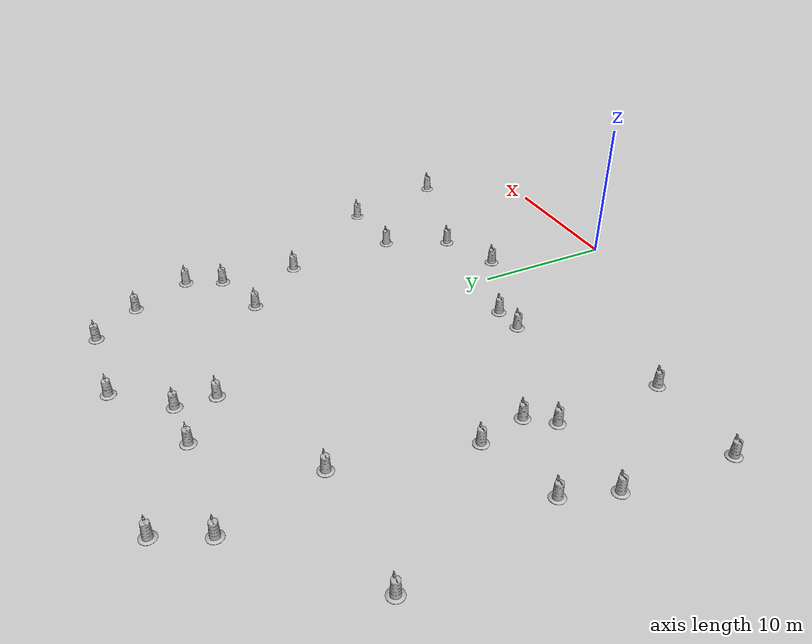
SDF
<sdf version="1.6">
 <world name="IGVC_Advanced_Course">
  <model name="Construction Barrel_4">
   <link name="link">
    <inertial>
     <pose>0 0 0.4 0 -0 0</pose>
     <mass>500</mass>
     <inertia><ixx>51.2096</ixx><iyy>51.2096</iyy><izz>25</izz><ixy>0</ixy><ixz>0</ixz><iyz>0</iyz></inertia>
    </inertial>
    <collision name="collision">
     <geometry><mesh><uri>model://construction_barrel/meshes/construction_barrel.dae</uri></mesh></geometry>
    </collision>
    <visual name="visual">
     <geometry><mesh><uri>model://construction_barrel/meshes/construction_barrel.dae</uri></mesh></geometry>
    </visual>
   </link>
   <pose>-14.9036 35.2693 -0 0 -0 0.000427</pose>
  </model>
  <model name="Construction Barrel_5">
   <link name="link">
    <inertial>
     <pose>0 0 0.4 0 -0 0</pose>
     <mass>500</mass>
     <inertia><ixx>51.2096</ixx><iyy>51.2096</iyy><izz>25</izz><ixy>0</ixy><ixz>0</ixz><iyz>0</iyz></inertia>
    </inertial>
    <collision name="collision">
     <geometry><mesh><uri>model://construction_barrel/meshes/construction_barrel.dae</uri></mesh></geometry>
    </collision>
    <visual name="visual">
     <geometry><mesh><uri>model://construction_barrel/meshes/construction_barrel.dae</uri></mesh></geometry>
    </visual>
   </link>
   <pose>-13.4627 38.3893 -0 0 -0 0.000489</pose>
  </model>
  <model name="Construction Barrel_6">
   <link name="link">
    <inertial>
     <pose>0 0 0.4 0 -0 0</pose>
     <mass>500</mass>
     <inertia><ixx>51.2096</ixx><iyy>51.2096</iyy><izz>25</izz><ixy>0</ixy><ixz>0</ixz><iyz>0</iyz></inertia>
    </inertial>
    <collision name="collision">
     <geometry><mesh><uri>model://construction_barrel/meshes/construction_barrel.dae</uri></mesh></geometry>
    </collision>
    <visual name="visual">
     <geometry><mesh><uri>model://construction_barrel/meshes/construction_barrel.dae</uri></mesh></geometry>
    </visual>
   </link>
   <pose>-13.0399 28.4221 0 0 1e-06 0.000425</pose>
  </model>
  <model name="Construction Barrel_7">
   <link name="link">
    <inertial>
     <pose>0 0 0.4 0 -0 0</pose>
     <mass>500</mass>
     <inertia><ixx>51.2096</ixx><iyy>51.2096</iyy><izz>25</izz><ixy>0</ixy><ixz>0</ixz><iyz>0</iyz></inertia>
    </inertial>
    <collision name="collision">
     <geometry><mesh><uri>model://construction_barrel/meshes/construction_barrel.dae</uri></mesh></geometry>
    </collision>
    <visual name="visual">
     <geometry><mesh><uri>model://construction_barrel/meshes/construction_barrel.dae</uri></mesh></geometry>
    </visual>
   </link>
   <pose>-22.0469 28.5069 -0 0 -0 0.000481</pose>
  </model>
  <model name="Construction Barrel_8">
   <link name="link">
    <inertial>
     <pose>0 0 0.4 0 -0 0</pose>
     <mass>500</mass>
     <inertia><ixx>51.2096</ixx><iyy>51.2096</iyy><izz>25</izz><ixy>0</ixy><ixz>0</ixz><iyz>0</iyz></inertia>
    </inertial>
    <collision name="collision">
     <geometry><mesh><uri>model://construction_barrel/meshes/construction_barrel.dae</uri></mesh></geometry>
    </collision>
    <visual name="visual">
     <geometry><mesh><uri>model://construction_barrel/meshes/construction_barrel.dae</uri></mesh></geometry>
    </visual>
   </link>
   <pose>-21.429 14.6502 -0 0 -0 0.000437</pose>
  </model>
  <model name="Construction Barrel_9">
   <link name="link">
    <inertial>
     <pose>0 0 0.4 0 -0 0</pose>
     <mass>500</mass>
     <inertia><ixx>51.2096</ixx><iyy>51.2096</iyy><izz>25</izz><ixy>0</ixy><ixz>0</ixz><iyz>0</iyz></inertia>
    </inertial>
    <collision name="collision">
     <geometry><mesh><uri>model://construction_barrel/meshes/construction_barrel.dae</uri></mesh></geometry>
    </collision>
    <visual name="visual">
     <geometry><mesh><uri>model://construction_barrel/meshes/construction_barrel.dae</uri></mesh></geometry>
    </visual>
   </link>
   <pose>-20.276 17.961 -1e-06 4e-06 -2e-06 0.00039</pose>
  </model>
  <model name="Construction Barrel_10">
   <link name="link">
    <inertial>
     <pose>0 0 0.4 0 -0 0</pose>
     <mass>500</mass>
     <inertia><ixx>51.2096</ixx><iyy>51.2096</iyy><izz>25</izz><ixy>0</ixy><ixz>0</ixz><iyz>0</iyz></inertia>
    </inertial>
    <collision name="collision">
     <geometry><mesh><uri>model://construction_barrel/meshes/construction_barrel.dae</uri></mesh></geometry>
    </collision>
    <visual name="visual">
     <geometry><mesh><uri>model://construction_barrel/meshes/construction_barrel.dae</uri></mesh></geometry>
    </visual>
   </link>
   <pose>-14.1646 16.1698 -1e-06 4e-06 -2e-06 0.000435</pose>
  </model>
  <model name="Construction Barrel_11">
   <link name="link">
    <inertial>
     <pose>0 0 0.4 0 -0 0</pose>
     <mass>500</mass>
     <inertia><ixx>51.2096</ixx><iyy>51.2096</iyy><izz>25</izz><ixy>0</ixy><ixz>0</ixz><iyz>0</iyz></inertia>
    </inertial>
    <collision name="collision">
     <geometry><mesh><uri>model://construction_barrel/meshes/construction_barrel.dae</uri></mesh></geometry>
    </collision>
    <visual name="visual">
     <geometry><mesh><uri>model://construction_barrel/meshes/construction_barrel.dae</uri></mesh></geometry>
    </visual>
   </link>
   <pose>-14.9174 19.5147 -3e-06 -3e-06 -8e-06 0.000389</pose>
  </model>
  <model name="Construction Barrel_12">
   <link name="link">
    <inertial>
     <pose>0 0 0.4 0 -0 0</pose>
     <mass>500</mass>
     <inertia><ixx>51.2096</ixx><iyy>51.2096</iyy><izz>25</izz><ixy>0</ixy><ixz>0</ixz><iyz>0</iyz></inertia>
    </inertial>
    <collision name="collision">
     <geometry><mesh><uri>model://construction_barrel/meshes/construction_barrel.dae</uri></mesh></geometry>
    </collision>
    <visual name="visual">
     <geometry><mesh><uri>model://construction_barrel/meshes/construction_barrel.dae</uri></mesh></geometry>
    </visual>
   </link>
   <pose>-15.4363 14.5313 -1e-06 4e-06 -2e-06 0.000429</pose>
  </model>
  <model name="Construction Barrel_13">
   <link name="link">
    <inertial>
     <pose>0 0 0.4 0 -0 0</pose>
     <mass>500</mass>
     <inertia><ixx>51.2096</ixx><iyy>51.2096</iyy><izz>25</izz><ixy>0</ixy><ixz>0</ixz><iyz>0</iyz></inertia>
    </inertial>
    <collision name="collision">
     <geometry><mesh><uri>model://construction_barrel/meshes/construction_barrel.dae</uri></mesh></geometry>
    </collision>
    <visual name="visual">
     <geometry><mesh><uri>model://construction_barrel/meshes/construction_barrel.dae</uri></mesh></geometry>
    </visual>
   </link>
   <pose>-4.03664 11.5223 -3e-06 -3e-06 -8e-06 0.000386</pose>
  </model>
  <model name="Construction Barrel_14">
   <link name="link">
    <inertial>
     <pose>0 0 0.4 0 -0 0</pose>
     <mass>500</mass>
     <inertia><ixx>51.2096</ixx><iyy>51.2096</iyy><izz>25</izz><ixy>0</ixy><ixz>0</ixz><iyz>0</iyz></inertia>
    </inertial>
    <collision name="collision">
     <geometry><mesh><uri>model://construction_barrel/meshes/construction_barrel.dae</uri></mesh></geometry>
    </collision>
    <visual name="visual">
     <geometry><mesh><uri>model://construction_barrel/meshes/construction_barrel.dae</uri></mesh></geometry>
    </visual>
   </link>
   <pose>-15.2798 6.86665 -3e-06 -3e-06 -8e-06 0.000419</pose>
  </model>
  <model name="Construction Barrel_15">
   <link name="link">
    <inertial>
     <pose>0 0 0.4 0 -0 0</pose>
     <mass>500</mass>
     <inertia><ixx>51.2096</ixx><iyy>51.2096</iyy><izz>25</izz><ixy>0</ixy><ixz>0</ixz><iyz>0</iyz></inertia>
    </inertial>
    <collision name="collision">
     <geometry><mesh><uri>model://construction_barrel/meshes/construction_barrel.dae</uri></mesh></geometry>
    </collision>
    <visual name="visual">
     <geometry><mesh><uri>model://construction_barrel/meshes/construction_barrel.dae</uri></mesh></geometry>
    </visual>
   </link>
   <pose>-6.16211 11.3732 -0 0 -0 0.000399</pose>
  </model>
  <model name="Construction Barrel_16">
   <link name="link">
    <inertial>
     <pose>0 0 0.4 0 -0 0</pose>
     <mass>500</mass>
     <inertia><ixx>51.2096</ixx><iyy>51.2096</iyy><izz>25</izz><ixy>0</ixy><ixz>0</ixz><iyz>0</iyz></inertia>
    </inertial>
    <collision name="collision">
     <geometry><mesh><uri>model://construction_barrel/meshes/construction_barrel.dae</uri></mesh></geometry>
    </collision>
    <visual name="visual">
     <geometry><mesh><uri>model://construction_barrel/meshes/construction_barrel.dae</uri></mesh></geometry>
    </visual>
   </link>
   <pose>1.99952 8.43856 -1e-06 8e-06 2e-06 0.000351</pose>
  </model>
  <model name="Construction Barrel_17">
   <link name="link">
    <inertial>
     <pose>0 0 0.4 0 -0 0</pose>
     <mass>500</mass>
     <inertia><ixx>51.2096</ixx><iyy>51.2096</iyy><izz>25</izz><ixy>0</ixy><ixz>0</ixz><iyz>0</iyz></inertia>
    </inertial>
    <collision name="collision">
     <geometry><mesh><uri>model://construction_barrel/meshes/construction_barrel.dae</uri></mesh></geometry>
    </collision>
    <visual name="visual">
     <geometry><mesh><uri>model://construction_barrel/meshes/construction_barrel.dae</uri></mesh></geometry>
    </visual>
   </link>
   <pose>-22.0249 7.09638 0 0 1e-06 0.000331</pose>
  </model>
  <model name="Construction Barrel_18">
   <link name="link">
    <inertial>
     <pose>0 0 0.4 0 -0 0</pose>
     <mass>500</mass>
     <inertia><ixx>51.2096</ixx><iyy>51.2096</iyy><izz>25</izz><ixy>0</ixy><ixz>0</ixz><iyz>0</iyz></inertia>
    </inertial>
    <collision name="collision">
     <geometry><mesh><uri>model://construction_barrel/meshes/construction_barrel.dae</uri></mesh></geometry>
    </collision>
    <visual name="visual">
     <geometry><mesh><uri>model://construction_barrel/meshes/construction_barrel.dae</uri></mesh></geometry>
    </visual>
   </link>
   <pose>13.3455 14.7514 -0 0 -0 0.000352</pose>
  </model>
  <model name="Construction Barrel_19">
   <link name="link">
    <inertial>
     <pose>0 0 0.4 0 -0 0</pose>
     <mass>500</mass>
     <inertia><ixx>51.2096</ixx><iyy>51.2096</iyy><izz>25</izz><ixy>0</ixy><ixz>0</ixz><iyz>0</iyz></inertia>
    </inertial>
    <collision name="collision">
     <geometry><mesh><uri>model://construction_barrel/meshes/construction_barrel.dae</uri></mesh></geometry>
    </collision>
    <visual name="visual">
     <geometry><mesh><uri>model://construction_barrel/meshes/construction_barrel.dae</uri></mesh></geometry>
    </visual>
   </link>
   <pose>8.1554 14.512 -1e-06 2e-06 -2e-06 0.000411</pose>
  </model>
  <model name="Construction Barrel_20">
   <link name="link">
    <inertial>
     <pose>0 0 0.4 0 -0 0</pose>
     <mass>500</mass>
     <inertia><ixx>51.2096</ixx><iyy>51.2096</iyy><izz>25</izz><ixy>0</ixy><ixz>0</ixz><iyz>0</iyz></inertia>
    </inertial>
    <collision name="collision">
     <geometry><mesh><uri>model://construction_barrel/meshes/construction_barrel.dae</uri></mesh></geometry>
    </collision>
    <visual name="visual">
     <geometry><mesh><uri>model://construction_barrel/meshes/construction_barrel.dae</uri></mesh></geometry>
    </visual>
   </link>
   <pose>6.1675 10.0697 -0 0 -0 0.000412</pose>
  </model>
  <model name="Construction Barrel_21">
   <link name="link">
    <inertial>
     <pose>0 0 0.4 0 -0 0</pose>
     <mass>500</mass>
     <inertia><ixx>51.2096</ixx><iyy>51.2096</iyy><izz>25</izz><ixy>0</ixy><ixz>0</ixz><iyz>0</iyz></inertia>
    </inertial>
    <collision name="collision">
     <geometry><mesh><uri>model://construction_barrel/meshes/construction_barrel.dae</uri></mesh></geometry>
    </collision>
    <visual name="visual">
     <geometry><mesh><uri>model://construction_barrel/meshes/construction_barrel.dae</uri></mesh></geometry>
    </visual>
   </link>
   <pose>15.3462 7.00857 -3e-06 -3e-06 -8e-06 0.000354</pose>
  </model>
  <model name="Construction Barrel_43">
   <link name="link">
    <inertial>
     <pose>0 0 0.4 0 -0 0</pose>
     <mass>500</mass>
     <inertia><ixx>51.2096</ixx><iyy>51.2096</iyy><izz>25</izz><ixy>0</ixy><ixz>0</ixz><iyz>0</iyz></inertia>
    </inertial>
    <collision name="collision">
     <geometry><mesh><uri>model://construction_barrel/meshes/construction_barrel.dae</uri></mesh></geometry>
    </collision>
    <visual name="visual">
     <geometry><mesh><uri>model://construction_barrel/meshes/construction_barrel.dae</uri></mesh></geometry>
    </visual>
   </link>
   <pose>-7.60718 34.7604 -0 0 -0 0.000173</pose>
  </model>
  <model name="Construction Barrel_44">
   <link name="link">
    <inertial>
     <pose>0 0 0.4 0 -0 0</pose>
     <mass>500</mass>
     <inertia><ixx>51.2096</ixx><iyy>51.2096</iyy><izz>25</izz><ixy>0</ixy><ixz>0</ixz><iyz>0</iyz></inertia>
    </inertial>
    <collision name="collision">
     <geometry><mesh><uri>model://construction_barrel/meshes/construction_barrel.dae</uri></mesh></geometry>
    </collision>
    <visual name="visual">
     <geometry><mesh><uri>model://construction_barrel/meshes/construction_barrel.dae</uri></mesh></geometry>
    </visual>
   </link>
   <pose>-4.14422 34.7029 -2e-06 2e-06 9e-06 7.9e-05</pose>
  </model>
  <model name="Construction Barrel_45">
   <link name="link">
    <inertial>
     <pose>0 0 0.4 0 -0 0</pose>
     <mass>500</mass>
     <inertia><ixx>51.2096</ixx><iyy>51.2096</iyy><izz>25</izz><ixy>0</ixy><ixz>0</ixz><iyz>0</iyz></inertia>
    </inertial>
    <collision name="collision">
     <geometry><mesh><uri>model://construction_barrel/meshes/construction_barrel.dae</uri></mesh></geometry>
    </collision>
    <visual name="visual">
     <geometry><mesh><uri>model://construction_barrel/meshes/construction_barrel.dae</uri></mesh></geometry>
    </visual>
   </link>
   <pose>-4.27358 32.0776 -2e-06 2e-06 9e-06 0.000147</pose>
  </model>
  <model name="Construction Barrel_46">
   <link name="link">
    <inertial>
     <pose>0 0 0.4 0 -0 0</pose>
     <mass>500</mass>
     <inertia><ixx>51.2096</ixx><iyy>51.2096</iyy><izz>25</izz><ixy>0</ixy><ixz>0</ixz><iyz>0</iyz></inertia>
    </inertial>
    <collision name="collision">
     <geometry><mesh><uri>model://construction_barrel/meshes/construction_barrel.dae</uri></mesh></geometry>
    </collision>
    <visual name="visual">
     <geometry><mesh><uri>model://construction_barrel/meshes/construction_barrel.dae</uri></mesh></geometry>
    </visual>
   </link>
   <pose>8.24906 27.9895 -2e-06 2e-06 9e-06 9.8e-05</pose>
  </model>
  <model name="Construction Barrel_47">
   <link name="link">
    <inertial>
     <pose>0 0 0.4 0 -0 0</pose>
     <mass>500</mass>
     <inertia><ixx>51.2096</ixx><iyy>51.2096</iyy><izz>25</izz><ixy>0</ixy><ixz>0</ixz><iyz>0</iyz></inertia>
    </inertial>
    <collision name="collision">
     <geometry><mesh><uri>model://construction_barrel/meshes/construction_barrel.dae</uri></mesh></geometry>
    </collision>
    <visual name="visual">
     <geometry><mesh><uri>model://construction_barrel/meshes/construction_barrel.dae</uri></mesh></geometry>
    </visual>
   </link>
   <pose>4.13621 26.8095 -3e-06 -3e-06 -8e-06 8.5e-05</pose>
  </model>
  <model name="Construction Barrel_48">
   <link name="link">
    <inertial>
     <pose>0 0 0.4 0 -0 0</pose>
     <mass>500</mass>
     <inertia><ixx>51.2096</ixx><iyy>51.2096</iyy><izz>25</izz><ixy>0</ixy><ixz>0</ixz><iyz>0</iyz></inertia>
    </inertial>
    <collision name="collision">
     <geometry><mesh><uri>model://construction_barrel/meshes/construction_barrel.dae</uri></mesh></geometry>
    </collision>
    <visual name="visual">
     <geometry><mesh><uri>model://construction_barrel/meshes/construction_barrel.dae</uri></mesh></geometry>
    </visual>
   </link>
   <pose>7.7653 22.5576 -2e-06 2e-06 9e-06 6.9e-05</pose>
  </model>
  <model name="Construction Barrel_49">
   <link name="link">
    <inertial>
     <pose>0 0 0.4 0 -0 0</pose>
     <mass>500</mass>
     <inertia><ixx>51.2096</ixx><iyy>51.2096</iyy><izz>25</izz><ixy>0</ixy><ixz>0</ixz><iyz>0</iyz></inertia>
    </inertial>
    <collision name="collision">
     <geometry><mesh><uri>model://construction_barrel/meshes/construction_barrel.dae</uri></mesh></geometry>
    </collision>
    <visual name="visual">
     <geometry><mesh><uri>model://construction_barrel/meshes/construction_barrel.dae</uri></mesh></geometry>
    </visual>
   </link>
   <pose>9.29584 30.5035 -0 0 -0 4.7e-05</pose>
  </model>
  <model name="Construction Barrel_50">
   <link name="link">
    <inertial>
     <pose>0 0 0.4 0 -0 0</pose>
     <mass>500</mass>
     <inertia><ixx>51.2096</ixx><iyy>51.2096</iyy><izz>25</izz><ixy>0</ixy><ixz>0</ixz><iyz>0</iyz></inertia>
    </inertial>
    <collision name="collision">
     <geometry><mesh><uri>model://construction_barrel/meshes/construction_barrel.dae</uri></mesh></geometry>
    </collision>
    <visual name="visual">
     <geometry><mesh><uri>model://construction_barrel/meshes/construction_barrel.dae</uri></mesh></geometry>
    </visual>
   </link>
   <pose>7.43807 34.5878 0 0 1e-06 6e-05</pose>
  </model>
  <model name="Construction Barrel_51">
   <link name="link">
    <inertial>
     <pose>0 0 0.4 0 -0 0</pose>
     <mass>500</mass>
     <inertia><ixx>51.2096</ixx><iyy>51.2096</iyy><izz>25</izz><ixy>0</ixy><ixz>0</ixz><iyz>0</iyz></inertia>
    </inertial>
    <collision name="collision">
     <geometry><mesh><uri>model://construction_barrel/meshes/construction_barrel.dae</uri></mesh></geometry>
    </collision>
    <visual name="visual">
     <geometry><mesh><uri>model://construction_barrel/meshes/construction_barrel.dae</uri></mesh></geometry>
    </visual>
   </link>
   <pose>5.0144 37.7638 -3e-06 -3e-06 -8e-06 1.2e-05</pose>
  </model>
  <model name="Construction Barrel_52">
   <link name="link">
    <inertial>
     <pose>0 0 0.4 0 -0 0</pose>
     <mass>500</mass>
     <inertia><ixx>51.2096</ixx><iyy>51.2096</iyy><izz>25</izz><ixy>0</ixy><ixz>0</ixz><iyz>0</iyz></inertia>
    </inertial>
    <collision name="collision">
     <geometry><mesh><uri>model://construction_barrel/meshes/construction_barrel.dae</uri></mesh></geometry>
    </collision>
    <visual name="visual">
     <geometry><mesh><uri>model://construction_barrel/meshes/construction_barrel.dae</uri></mesh></geometry>
    </visual>
   </link>
   <pose>-1.17876 38.1166 -1e-06 2e-06 -2e-06 0.000112</pose>
  </model>
 </world>
</sdf>
